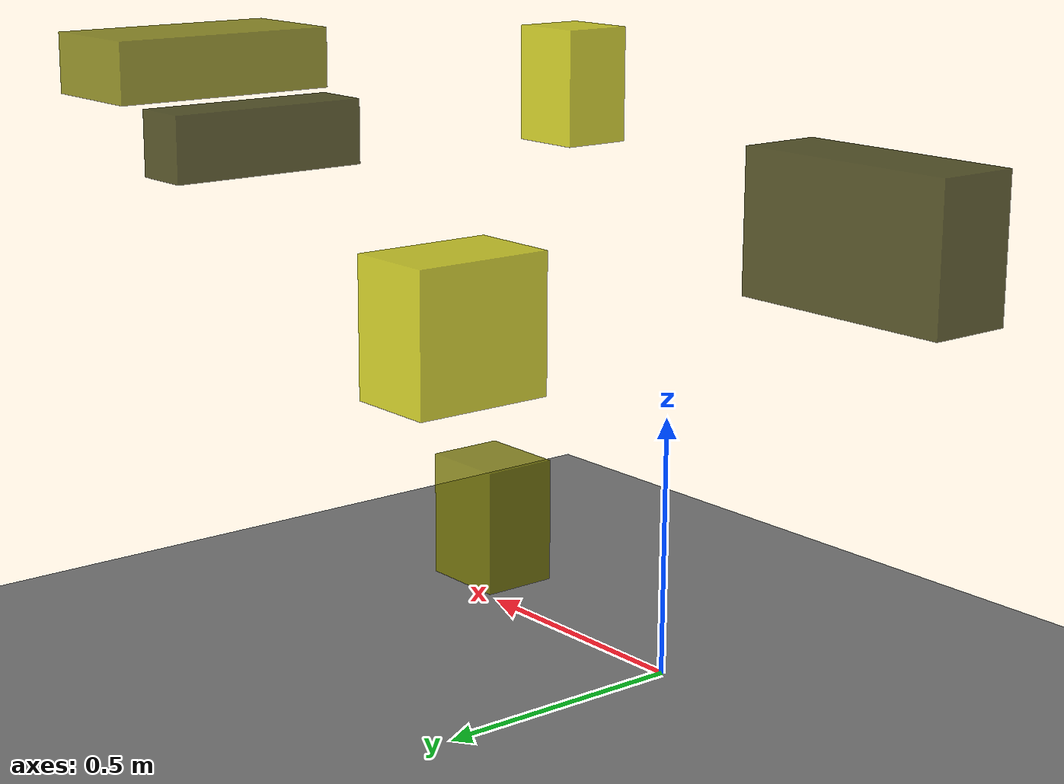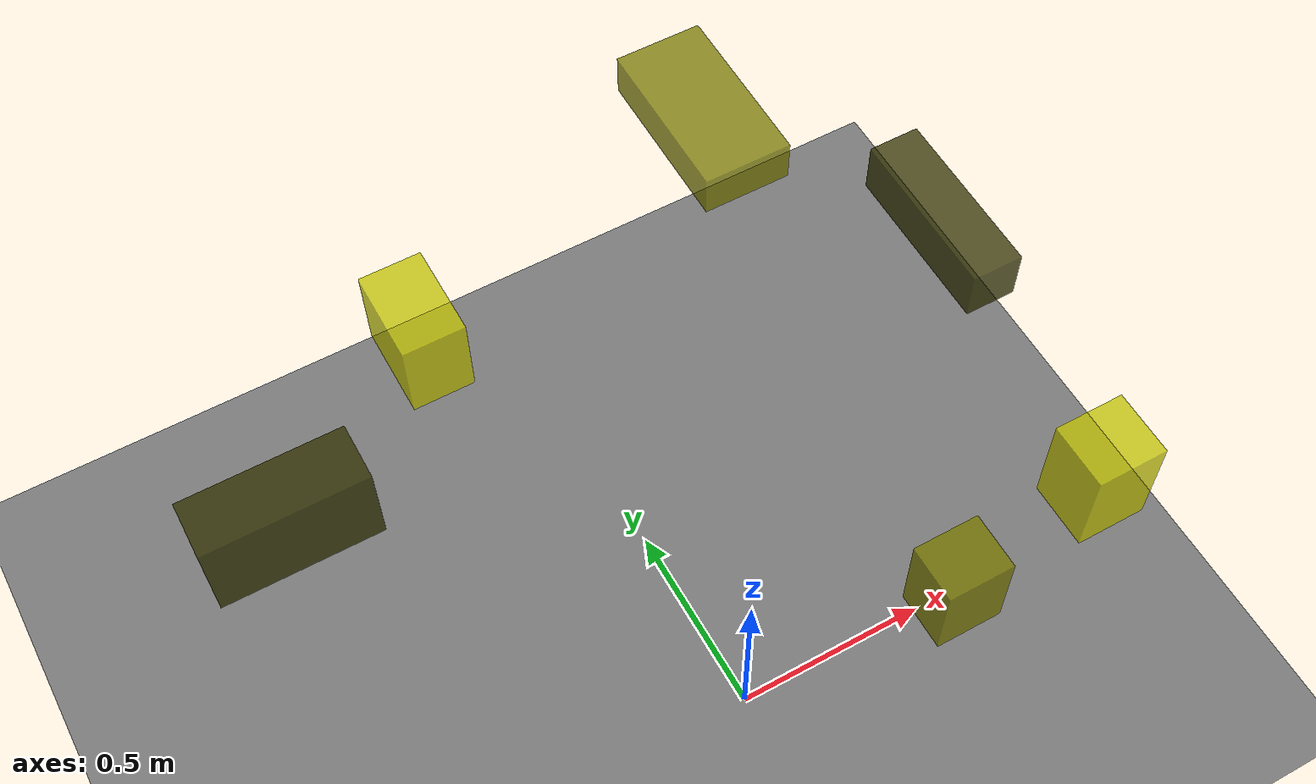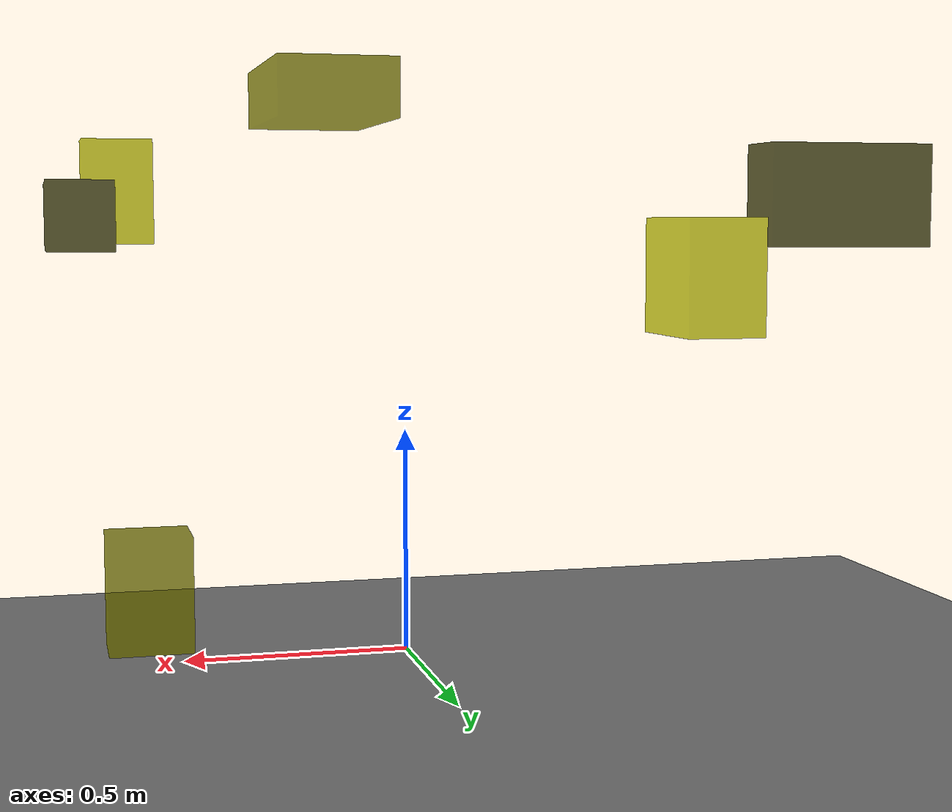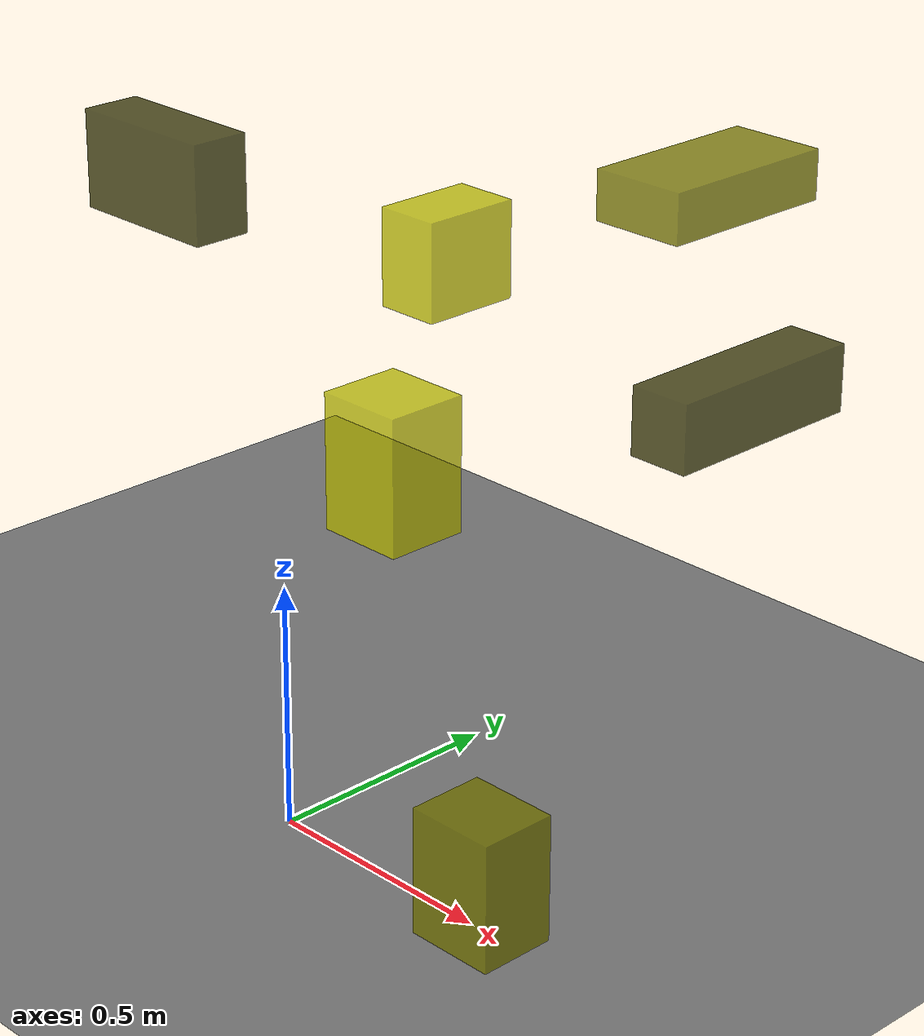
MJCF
<?xml version="1.0"?>
<mujoco model="obstacle_scene">
  <compiler angle="radian" coordinate="local"/>
  <option timestep="0.001" gravity="0 0 -9.81"/>

  <asset>
    <material name="obstacle_mat" rgba="0.8 0.8 0.0 0.8"/>
    <material name="ground_mat" rgba="0.5 0.5 0.5 1"/>
  </asset>

  <worldbody>
    <!-- Ground plane -->
    <geom name="ground" type="plane" size="3 3 0.1" material="ground_mat"/>

    <!-- Obstacles -->
    <body name="obstacle_0" pos="-0.847311 0.420499 1.021097">
      <geom name="obs_0" type="box" size="0.179094 0.066232 0.107526" rgba="0.2 0.2 0.0 0.8"/>
    </body>
    <body name="obstacle_1" pos="0.571660 -0.043872 0.154362">
      <geom name="obs_1" type="box" size="0.092213 0.078852 0.128611" rgba="0.5 0.5 0.0 0.8"/>
    </body>
    <body name="obstacle_2" pos="-0.397462 0.796277 0.864381">
      <geom name="obs_2" type="box" size="0.074183 0.113777 0.108321" rgba="0.8 0.8 0.0 0.8"/>
    </body>
    <body name="obstacle_3" pos="0.718581 0.424037 0.974534">
      <geom name="obs_3" type="box" size="0.060517 0.204875 0.064260" rgba="0.2 0.2 0.0 0.8"/>
    </body>
    <body name="obstacle_4" pos="0.314147 0.788373 1.182753">
      <geom name="obs_4" type="box" size="0.100569 0.194682 0.050271" rgba="0.5 0.5 0.0 0.8"/>
    </body>
    <body name="obstacle_5" pos="0.613282 -0.287213 1.034637">
      <geom name="obs_5" type="box" size="0.078590 0.073467 0.117992" rgba="0.8 0.8 0.0 0.8"/>
    </body>
  </worldbody>
</mujoco>
